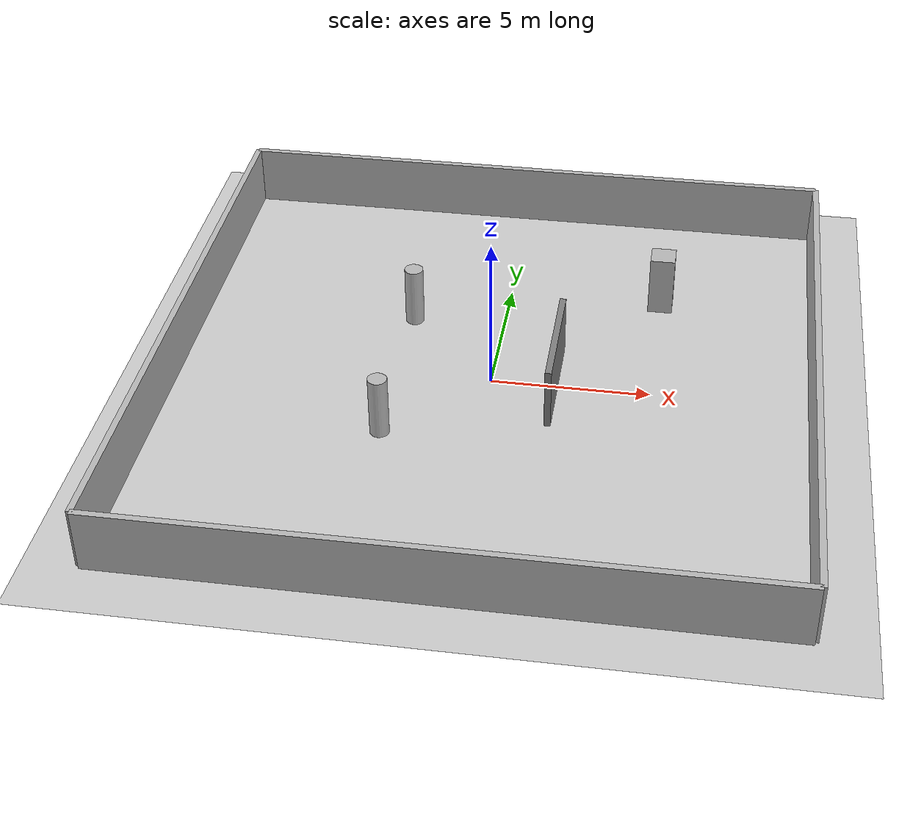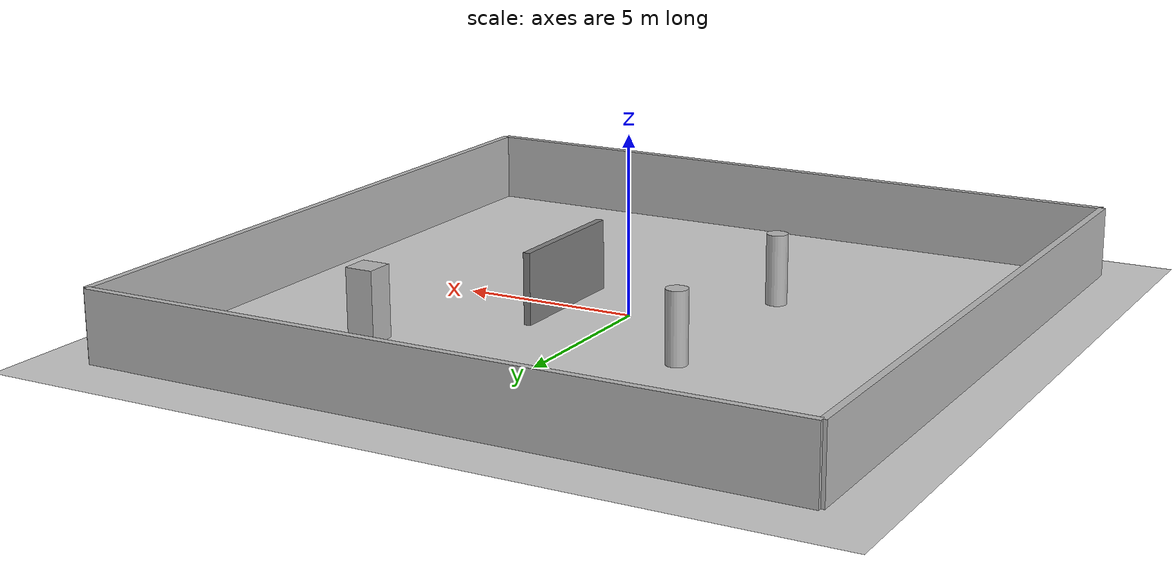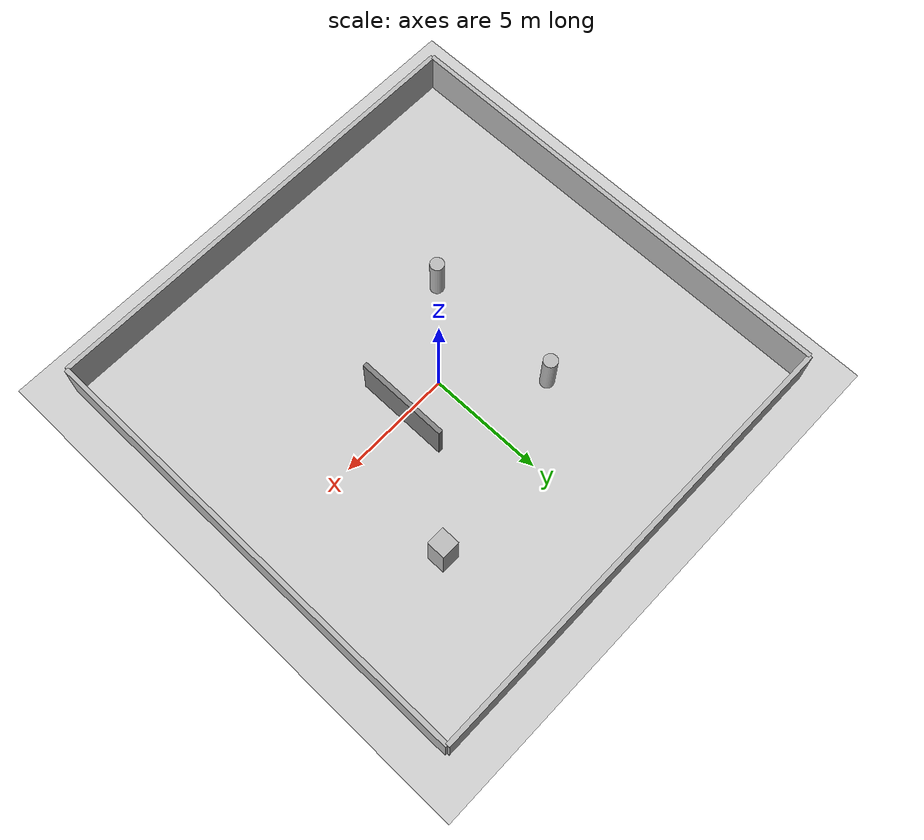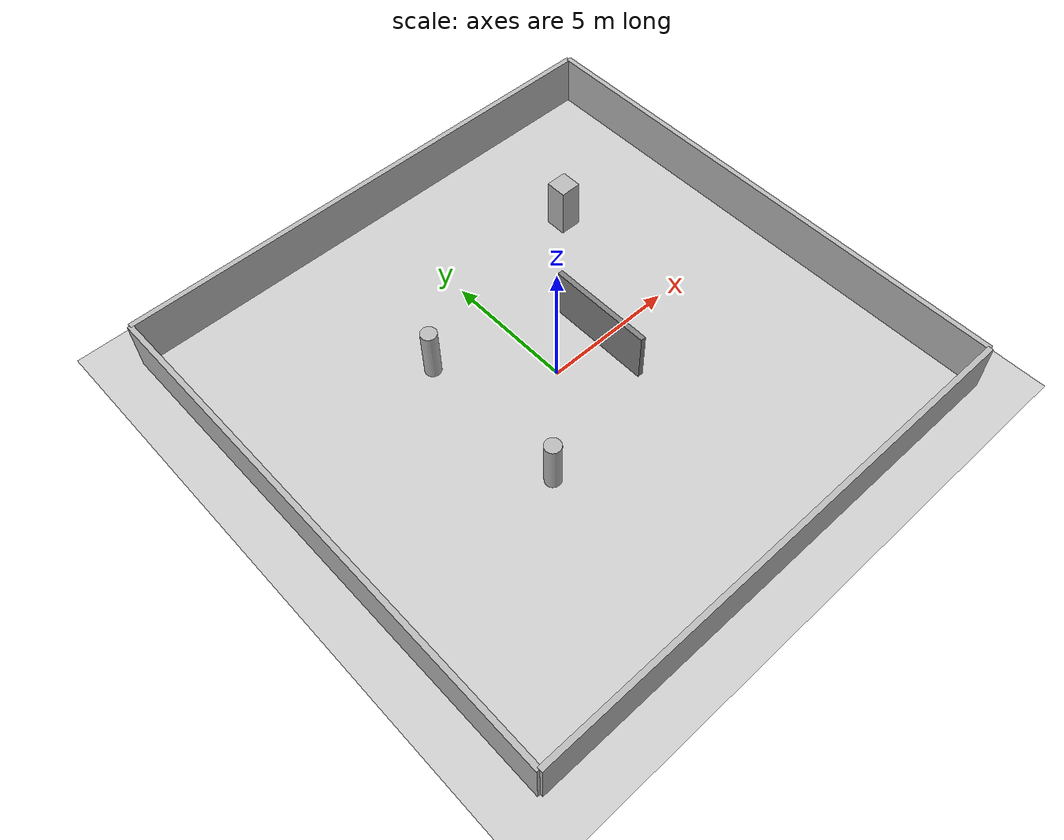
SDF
<sdf version="1.8">
 <world name="complex_lab">
  <plugin filename="gz-sim-physics-system" name="gz::sim::systems::Physics"/>
  <plugin filename="gz-sim-user-commands-system" name="gz::sim::systems::UserCommands"/>
  <plugin filename="gz-sim-scene-broadcaster-system" name="gz::sim::systems::SceneBroadcaster"/>
  <plugin filename="gz-sim-sensors-system" name="gz::sim::systems::Sensors">
   <render_engine>ogre2</render_engine>
  </plugin>
  <scene>
   <ambient>1.0 1.0 1.0 1.0</ambient>
   <background>0.8 0.8 0.8 1.0</background>
   <shadows>true</shadows>
  </scene>
  <light type="directional" name="sun">
   <pose>0 0 10 0 0 0</pose>
   <diffuse>0.8 0.8 0.8 1</diffuse>
   <specular>0.2 0.2 0.2 1</specular>
   <direction>-0.5 0.1 -0.9</direction>
  </light>
  <model name="ground_plane">
   <static>true</static>
   <link name="link">
    <collision name="collision">
     <geometry><plane><normal>0 0 1</normal><size>100 100</size></plane></geometry>
    </collision>
    <visual name="visual">
     <geometry><plane><normal>0 0 1</normal><size>100 100</size></plane></geometry>
     <material><ambient>0.8 0.8 0.8 1</ambient><diffuse>0.8 0.8 0.8 1</diffuse></material>
    </visual>
   </link>
  </model>
  <model name="outer_walls">
   <static>true</static>
   <link name="north">
    <pose>0 10 1 0 0 0</pose>
    <collision name="c"><geometry><box><size>20 0.2 2</size></box></geometry></collision>
    <visual name="v"><geometry><box><size>20 0.2 2</size></box></geometry></visual>
   </link>
   <link name="south">
    <pose>0 -10 1 0 0 0</pose>
    <collision name="c"><geometry><box><size>20 0.2 2</size></box></geometry></collision>
    <visual name="v"><geometry><box><size>20 0.2 2</size></box></geometry></visual>
   </link>
   <link name="west">
    <pose>-10 0 1 0 0 0</pose>
    <collision name="c"><geometry><box><size>0.2 20 2</size></box></geometry></collision>
    <visual name="v"><geometry><box><size>0.2 20 2</size></box></geometry></visual>
   </link>
   <link name="east">
    <pose>10 0 1 0 0 0</pose>
    <collision name="c"><geometry><box><size>0.2 20 2</size></box></geometry></collision>
    <visual name="v"><geometry><box><size>0.2 20 2</size></box></geometry></visual>
   </link>
  </model>
  <model name="obstacles">
   <static>true</static>
   <link name="partition_1">
    <pose>2 0 1 0 0 1.57</pose>
    <collision name="c"><geometry><box><size>4 0.2 2</size></box></geometry></collision>
    <visual name="v">
     <geometry><box><size>4 0.2 2</size></box></geometry>
     <material><ambient>0.5 0.5 0.5 1</ambient></material>
    </visual>
   </link>
   <link name="pillar_1">
    <pose>-3 3 1 0 0 0</pose>
    <collision name="c">
     <geometry><cylinder><radius>0.3</radius><length>2</length></cylinder></geometry>
    </collision>
    <visual name="v"><geometry><cylinder><radius>0.3</radius><length>2</length></cylinder></geometry></visual>
   </link>
   <link name="pillar_2">
    <pose>-3 -3 1 0 0 0</pose>
    <collision name="c">
     <geometry><cylinder><radius>0.3</radius><length>2</length></cylinder></geometry>
    </collision>
    <visual name="v"><geometry><cylinder><radius>0.3</radius><length>2</length></cylinder></geometry></visual>
   </link>
   <link name="pillar_3">
    <pose>5 5 1 0 0 0</pose>
    <collision name="c"><geometry><box><size>0.8 0.8 2</size></box></geometry></collision>
    <visual name="v"><geometry><box><size>0.8 0.8 2</size></box></geometry></visual>
   </link>
  </model>
 </world>
</sdf>
